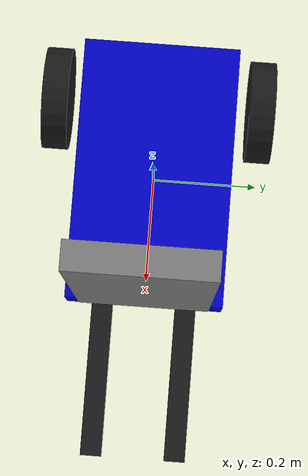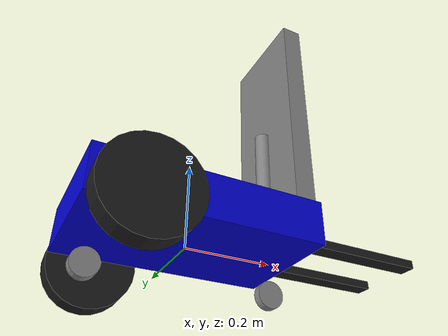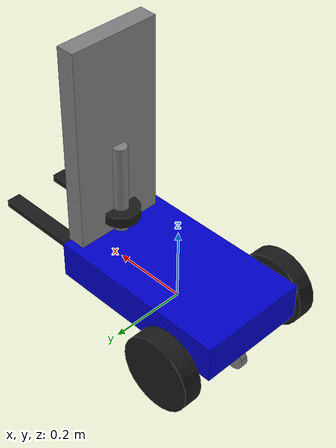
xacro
<?xml version="1.0"?>
<robot name="agv"
    xmlns:xacro="http://www.ros.org/wiki/xacro">
    <xacro:arg name="controller_config" default=""/>
    <xacro:include filename="materials.urdf.xacro"/>
    <xacro:include filename="base.urdf.xacro"/>
    <xacro:include filename="wheels.urdf.xacro"/>
    <xacro:include filename="sensors.urdf.xacro"/>
    <xacro:include filename="agv.ros2_control.xacro"/>

    <xacro:agv_ros2_control controller_config="$(arg controller_config)"/>

    <!-- Joints for wheels -->
    <joint name="base_to_left_wheel" type="continuous">
        <parent link="base_link"/>
        <child link="left_wheel"/>
        <origin xyz="-0.15 0.2 0.0" rpy="0 0 0"/>
        <axis xyz="0 1 0"/>
    </joint>

    <joint name="base_to_right_wheel" type="continuous">
        <parent link="base_link"/>
        <child link="right_wheel"/>
        <origin xyz="-0.15 -0.2 0.0" rpy="0 0 0"/>
        <axis xyz="0 1 0"/>
    </joint>

    <!-- Forklift mast (fixed) -->
    <link name="mast_link">
        <visual>
            <geometry>
                <box size="0.05 0.25 0.6"/>
            </geometry>
            <origin rpy="0 0 0" xyz="0 0 0.3"/>
            <material name="grey"/>
        </visual>
        <collision>
            <geometry>
                <box size="0.05 0.25 0.6"/>
            </geometry>
            <origin rpy="0 0 0" xyz="0 0 0.3"/>
        </collision>
        <inertial>
            <mass value="3.0"/>
            <inertia ixx="0.02" ixy="0" ixz="0" iyy="0.02" iyz="0" izz="0.02"/>
        </inertial>
    </link>

    <joint name="base_to_mast" type="fixed">
        <parent link="base_link"/>
        <child link="mast_link"/>
        <origin xyz="0.23 0 0.05" rpy="0 0 0"/>
    </joint>

    <!-- Fork carriage (prismatic lift) -->
    <link name="fork_link">
        <visual>
            <geometry>
                <box size="0.35 0.04 0.02"/>
            </geometry>
            <origin rpy="0 0 0" xyz="0.17 0.08 0.01"/>
            <material name="black"/>
        </visual>
        <visual>
            <geometry>
                <box size="0.35 0.04 0.02"/>
            </geometry>
            <origin rpy="0 0 0" xyz="0.17 -0.08 0.01"/>
            <material name="black"/>
        </visual>
        <inertial>
            <mass value="2.0"/>
            <inertia ixx="0.01" ixy="0" ixz="0" iyy="0.01" iyz="0" izz="0.01"/>
        </inertial>
    </link>

    <joint name="base_to_fork_lift" type="prismatic">
        <parent link="base_link"/>
        <child link="fork_link"/>
        <origin xyz="0.2 0 0.02" rpy="0 0 0"/>
        <axis xyz="0 0 1"/>
        <limit lower="0.0" upper="0.35" effort="500.0" velocity="0.15"/>
    </joint>

    <link name="fork_tip"/>
    <joint name="fork_to_tip" type="fixed">
        <parent link="fork_link"/>
        <child link="fork_tip"/>
        <origin xyz="0.35 0 0.02" rpy="0 0 0"/>
    </joint>

    <!-- Joints for caster wheels -->
    <joint name="base_to_caster_front" type="continuous">
        <parent link="base_link"/>
        <child link="caster_front"/>
        <origin xyz="0.2 0 -0.07" rpy="0 0 0"/>
        <axis xyz="0 1 0"/>
    </joint>

    <joint name="base_to_caster_rear" type="continuous">
        <parent link="base_link"/>
        <child link="caster_rear"/>
        <origin xyz="-0.2 0 -0.07" rpy="0 0 0"/>
        <axis xyz="0 1 0"/>
    </joint>

    <!-- Joints for sensors -->
    <joint name="base_to_lidar" type="fixed">
        <parent link="base_link"/>
        <child link="lidar_link"/>
        <origin xyz="0.2 0 0.15" rpy="0 0 0"/>
    </joint>

    <joint name="base_to_camera" type="fixed">
        <parent link="base_link"/>
        <child link="camera_link"/>
        <origin xyz="0.28 0 0.40" rpy="0 0 0"/>
    </joint>

    <!-- Gazebo DetachableJoint plugins for picking up cargo -->
    <gazebo>
        <plugin filename="gz-sim-detachable-joint-system" name="gz::sim::systems::DetachableJoint">
            <parent_link>fork_link</parent_link>
            <child_model>cargo_red_1</child_model>
            <child_model_link>link</child_model_link>
            <detach_topic>/model/agv/detach_red</detach_topic>
            <attach_topic>/model/agv/attach_red</attach_topic>
        </plugin>
        <plugin filename="gz-sim-detachable-joint-system" name="gz::sim::systems::DetachableJoint">
            <parent_link>fork_link</parent_link>
            <child_model>cargo_blue_1</child_model>
            <child_model_link>link</child_model_link>
            <detach_topic>/model/agv/detach_blue</detach_topic>
            <attach_topic>/model/agv/attach_blue</attach_topic>
        </plugin>
        <plugin filename="gz-sim-detachable-joint-system" name="gz::sim::systems::DetachableJoint">
            <parent_link>fork_link</parent_link>
            <child_model>cargo_yellow_1</child_model>
            <child_model_link>link</child_model_link>
            <detach_topic>/model/agv/detach_yellow</detach_topic>
            <attach_topic>/model/agv/attach_yellow</attach_topic>
        </plugin>
    </gazebo>
</robot>

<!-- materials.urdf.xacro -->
<robot>
    <material name="black">
        <color rgba="0.1 0.1 0.1 1.0"/>
    </material>
    <material name="blue">
        <color rgba="0.0 0.0 0.8 1.0"/>
    </material>
    <material name="red">
        <color rgba="0.8 0.0 0.0 1.0"/>
    </material>
    <material name="green">
        <color rgba="0.0 0.8 0.0 1.0"/>
    </material>
    <material name="grey">
        <color rgba="0.5 0.5 0.5 1.0"/>
    </material>
</robot>

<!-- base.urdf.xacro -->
<robot xmlns:xacro="http://www.ros.org/wiki/xacro">
    <link name="base_link">
        <visual>
            <geometry>
                <box size="0.5 0.3 0.1"/>
            </geometry>
            <origin rpy="0 0 0" xyz="0 0 0.05"/>
            <material name="blue"/>
        </visual>
        <collision>
            <geometry>
                <box size="0.5 0.3 0.1"/>
            </geometry>
            <origin rpy="0 0 0" xyz="0 0 0.05"/>
        </collision>
        <inertial>
            <mass value="10.0"/>
            <inertia ixx="0.1" ixy="0" ixz="0" iyy="0.1" iyz="0" izz="0.1"/>
        </inertial>
        <!-- Camera Pillar -->
        <visual>
            <geometry>
                <cylinder radius="0.02" length="0.3"/>
            </geometry>
            <origin rpy="0 0 0" xyz="0.2 0 0.2"/>
            <material name="grey"/>
        </visual>
        <collision>
            <geometry>
                <cylinder radius="0.02" length="0.3"/>
            </geometry>
            <origin rpy="0 0 0" xyz="0.2 0 0.2"/>
        </collision>
    </link>
</robot>

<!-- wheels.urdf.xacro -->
<robot xmlns:xacro="http://www.ros.org/wiki/xacro">
    <!-- Left wheel -->
    <link name="left_wheel">
        <visual>
            <geometry>
                <cylinder radius="0.1" length="0.05"/>
            </geometry>
            <origin rpy="1.5708 0 0" xyz="0 0 0"/>
            <material name="black"/>
        </visual>
        <collision>
            <geometry>
                <cylinder radius="0.1" length="0.05"/>
            </geometry>
            <origin rpy="1.5708 0 0" xyz="0 0 0"/>
        </collision>
        <inertial>
            <mass value="1.0"/>
            <inertia ixx="0.01" ixy="0" ixz="0" iyy="0.01" iyz="0" izz="0.01"/>
        </inertial>
    </link>

    <!-- Right wheel -->
    <link name="right_wheel">
        <visual>
            <geometry>
                <cylinder radius="0.1" length="0.05"/>
            </geometry>
            <origin rpy="1.5708 0 0" xyz="0 0 0"/>
            <material name="black"/>
        </visual>
        <collision>
            <geometry>
                <cylinder radius="0.1" length="0.05"/>
            </geometry>
            <origin rpy="1.5708 0 0" xyz="0 0 0"/>
        </collision>
        <inertial>
            <mass value="1.0"/>
            <inertia ixx="0.01" ixy="0" ixz="0" iyy="0.01" iyz="0" izz="0.01"/>
        </inertial>
    </link>

    <!-- Caster wheels (small rolling wheels) -->
    <link name="caster_front">
        <visual>
            <geometry>
                <cylinder radius="0.03" length="0.02"/>
            </geometry>
            <origin rpy="1.5708 0 0" xyz="0 0 0"/>
            <material name="grey"/>
        </visual>
        <collision>
            <geometry>
                <cylinder radius="0.03" length="0.02"/>
            </geometry>
            <origin rpy="1.5708 0 0" xyz="0 0 0"/>
        </collision>
        <inertial>
            <mass value="0.2"/>
            <inertia ixx="0.001" ixy="0" ixz="0" iyy="0.001" iyz="0" izz="0.001"/>
        </inertial>
    </link>

    <link name="caster_rear">
        <visual>
            <geometry>
                <cylinder radius="0.03" length="0.02"/>
            </geometry>
            <origin rpy="1.5708 0 0" xyz="0 0 0"/>
            <material name="grey"/>
        </visual>
        <collision>
            <geometry>
                <cylinder radius="0.03" length="0.02"/>
            </geometry>
            <origin rpy="1.5708 0 0" xyz="0 0 0"/>
        </collision>
        <inertial>
            <mass value="0.2"/>
            <inertia ixx="0.001" ixy="0" ixz="0" iyy="0.001" iyz="0" izz="0.001"/>
        </inertial>
    </link>

    <gazebo reference="left_wheel">
        <mu1>1.0</mu1>
        <mu2>1.0</mu2>
        <kp>10000000.0</kp>
        <kd>1.0</kd>
        <material>Gazebo/Black</material>
    </gazebo>

    <gazebo reference="right_wheel">
        <mu1>1.0</mu1>
        <mu2>1.0</mu2>
        <kp>10000000.0</kp>
        <kd>1.0</kd>
        <material>Gazebo/Black</material>
    </gazebo>

    <gazebo reference="caster_front">
        <mu1>0.0</mu1>
        <mu2>0.0</mu2>
        <material>Gazebo/Grey</material>
    </gazebo>

    <gazebo reference="caster_rear">
        <mu1>0.0</mu1>
        <mu2>0.0</mu2>
        <material>Gazebo/Grey</material>
    </gazebo>

</robot>

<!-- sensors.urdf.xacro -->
<robot>
    <!-- LiDAR -->
    <link name="lidar_link">
        <visual>
            <geometry>
                <cylinder radius="0.05" length="0.03"/>
            </geometry>
            <origin rpy="0 0 0" xyz="0 0 0"/>
            <material name="black"/>
        </visual>
        <inertial>
            <mass value="0.1"/>
            <inertia ixx="1e-4" ixy="0" ixz="0" iyy="1e-4" iyz="0" izz="1e-4"/>
        </inertial>
    </link>

    <!-- Camera -->
    <link name="camera_link">
        <inertial>
            <mass value="0.05"/>
            <inertia ixx="1e-5" ixy="0" ixz="0" iyy="1e-5" iyz="0" izz="1e-5"/>
        </inertial>
    </link>

    <gazebo reference="lidar_link">
        <sensor name="lidar" type="gpu_lidar">
            <update_rate>10</update_rate>
            <lidar>
                <scan>
                    <horizontal>
                        <samples>720</samples>
                        <min_angle>-3.14159</min_angle>
                        <max_angle>3.14159</max_angle>
                    </horizontal>
                </scan>
                <range>
                    <min>0.48</min>
                    <max>10.0</max>
                </range>
            </lidar>
            <topic>/scan</topic>
            <frame_id>lidar_link</frame_id>
            <visualize>true</visualize>
        </sensor>
    </gazebo>

    <gazebo reference="camera_link">
        <sensor name="camera" type="camera">
            <update_rate>30</update_rate>
            <camera>
                <horizontal_fov>1.5708</horizontal_fov>
                <image>
                    <width>640</width>
                    <height>480</height>
                </image>
                <clip>
                    <near>0.1</near>
                    <far>10.0</far>
                </clip>
            </camera>
            <topic>/camera/image_raw</topic>
            <frame_id>camera_link</frame_id>
            <visualize>true</visualize>
        </sensor>
    </gazebo>
</robot>
